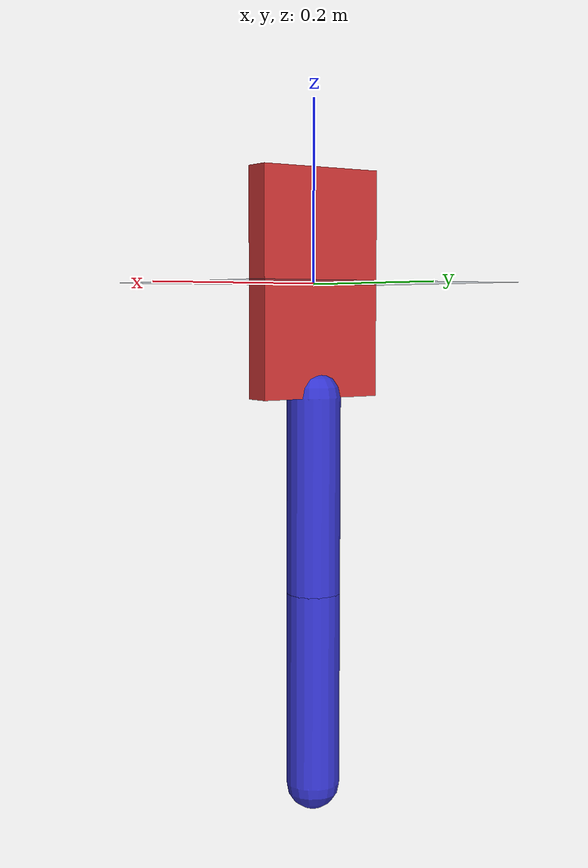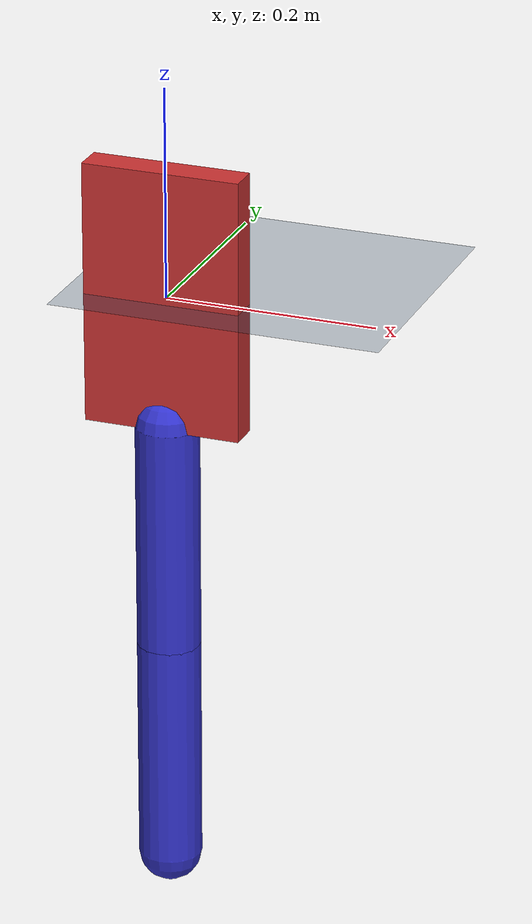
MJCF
<mujoco model="biped">
  <compiler angle="radian"/>

  <option timestep="0.002" gravity="0 0 -9.81"/>

  <asset>
    <texture type="2d" name="groundplane" builtin="checker" mark="edge" rgb1="0.2 0.3 0.4" rgb2="0.1 0.2 0.3" markrgb="0.8 0.8 0.8" width="300" height="300"/>
    <material name="groundplane" texture="groundplane" texuniform="true" texrepeat="5 5" reflectance="0.2"/>
  </asset>

  <worldbody>
    <light pos="0 0 1.5" dir="0 0 -1" directional="true"/>
    <geom name="floor"
          size="0 0 0.1"
          type="plane"
          material="groundplane"
          friction="0.5 0 0"
          condim="6"
         />

    <body name="trunk">
      <joint name="slide_x" type="slide" axis="1 0 0" />
      <joint name="slide_z" type="slide" axis="0 0 1" />
      <joint name="rotate_y" type="hinge" axis="0 1 0" />
      <geom name="trunk_geom" type="box" size="0.075 0.015 0.125" rgba="0.8 0.2 0.2 1" density="7111"/>

      <!-- Left Leg -->
      <body name="left_thigh" pos="0 0 -0.125">
        <inertial pos="0 0 -0.11" mass="0.25" diaginertia="0.0010083 0.0010083 1e-6"/>
        <joint name="left_hip" type="hinge" axis="0 1 0"/>
        <geom name="left_thigh_geom" fromto="0 0 0 0 0 -0.22" type="capsule" size="0.03" rgba="0.2 0.2 0.8 1"/>
        <body name="left_shin" pos="0 0 -0.22">
          <inertial pos="0 0 -0.11" mass="0.25" diaginertia="0.0010083 0.0010083 1e-6"/>
          <joint name="left_knee" type="hinge" axis="0 1 0"/>
          <geom name="left_shin_geom" fromto="0 0 0 0 0 -0.22" type="capsule" size="0.03" rgba="0.2 0.2 0.8 1"/>
        </body>
      </body>

      <!-- Right Leg -->
      <body name="right_thigh" pos="0 0 -0.125">
        <inertial pos="0 0 -0.11" mass="0.25" diaginertia="0.0010083 0.0010083 1e-6"/>
        <joint name="right_hip" type="hinge" axis="0 1 0"/>
        <geom name="right_thigh_geom" fromto="0 0 0 0 0 -0.22" type="capsule" size="0.03" rgba="0.2 0.2 0.8 1"/>
        <body name="right_shin" pos="0 0 -0.22">
          <inertial pos="0 0 -0.11" mass="0.25" diaginertia="0.0010083 0.0010083 1e-6"/>
          <joint name="right_knee" type="hinge" axis="0 1 0"/>
          <geom name="right_shin_geom" fromto="0 0 0 0 0 -0.22" type="capsule" size="0.03" rgba="0.2 0.2 0.8 1"/>
        </body>
      </body>

    </body>
  </worldbody>

  <contact>
    <exclude body1="left_thigh" body2="right_thigh"/>
    <exclude body1="left_thigh" body2="right_shin"/>
    <exclude body1="left_shin" body2="right_thigh"/>
    <exclude body1="left_shin" body2="right_shin"/>
  </contact>

  <actuator>
    <motor name="left_hip" joint="left_hip"    />
    <motor name="left_knee" joint="left_knee"  />
    <motor name="right_hip" joint="right_hip"  />
    <motor name="right_knee" joint="right_knee"/>
  </actuator>

  <keyframe>
    <key name="initial"
         qpos="0 0.65 0 -1.0472 1.5708 0 1.5708"
         qvel="0 0 0 0 0 0 0" />
  </keyframe>

</mujoco>
